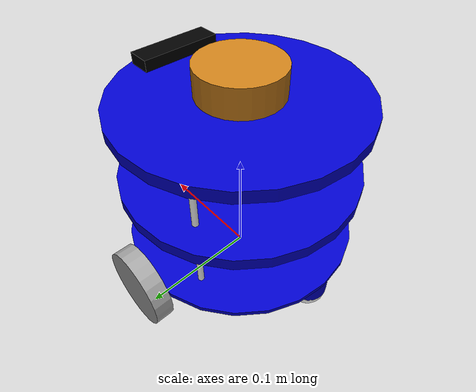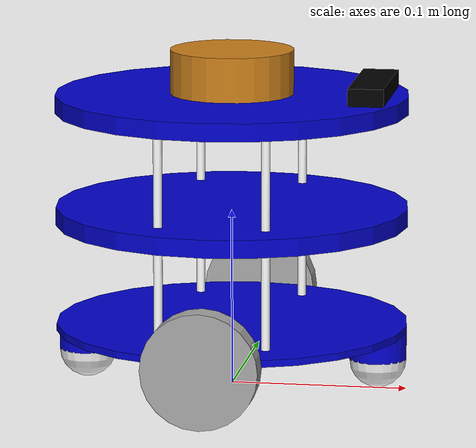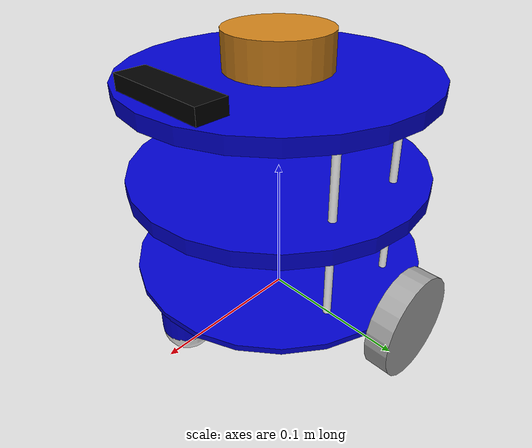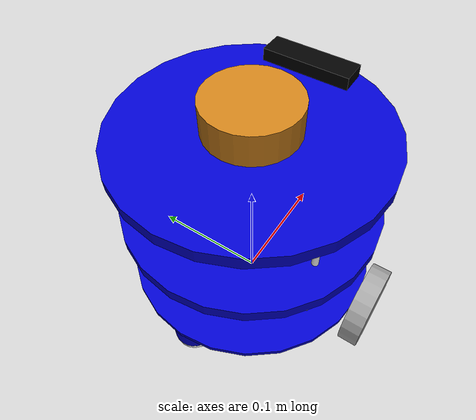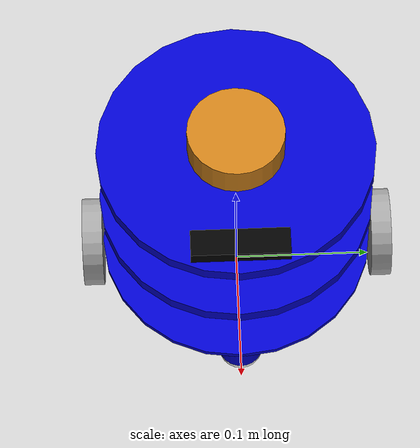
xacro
<?xml version='1.0'?>

<robot name="ronin">
  <!--
  ========== PROPERTIES ===========
  -->

  <!--All units in m-kg-s-radians unit system -->

  <property name="base_height" value="0.004" />
  <property name="base_radius" value="0.1" />
  <property name="base_mass" value="2.0" />

  <property name="wheel_radius" value="0.0325" />
  <property name="wheel_height" value="0.015" />
  <property name="wheel_mass" value="1" />

  <property name="caster_radius" value="${wheel_radius/2 + 0.00001}" />
  <property name="caster_mass" value="0.1" />

  <property name="tray_1_height" value="0.06" />
  <property name="tray_bar_radius" value="0.0025" />

  <property name="M_PI" value="3.1415926535897931" />
  <property name="M_PI_2" value="1.570796327" />
  <property name="DEG_TO_RAD" value="0.017453293" />

  <property name="laser_height" value="0.025" />
  <property name="laser_radius" value="0.035" />

  <!--
  ========== MATERIALS ===========
  -->
  <material name="Black">
    <color rgba="0.0 0.0 0.0 1.0"/>
  </material>

  <material name="Red">
    <color rgba="0.8 0.0 0.0 1.0"/>
  </material>

  <material name="White">
    <color rgba="1.0 1.0 1.0 1.0"/>
  </material>

  <material name="Blue">
    <color rgba="0.0 0.0 0.8 1.0"/>
  </material>

  <material name="Green">
    <color rgba="0.0 0.8 0.0 1.0"/>
  </material>

  <material name="Orange">
    <color rgba="0.8 0.5 0.1 1.0"/>
  </material>

  <material name="Gray">
    <color rgba="0.65 0.65 0.65 1.0"/>
  </material>

  <!--
  ========== MACROS ===========
  -->
  <!-- Macro for calculating inertia of cylinder -->
  <macro name="cylinder_inertia" params="m r h">
    <inertia  ixx="${m*(3*r*r+h*h)/12}" ixy = "0" ixz = "0"
              iyy="${m*(3*r*r+h*h)/12}" iyz = "0"
              izz="${m*r*r/2}" />
  </macro>

  <!-- Macro for calculating inertia of sphere -->
  <macro name="sphere_inertia" params="m r">
    <inertia  ixx="${2*m*r*r/5}" ixy = "0" ixz = "0"
              iyy="${2*m*r*r/5}" iyz = "0"
              izz="${2*m*r*r/5}" />
  </macro>

  <!-- Macro for TRANSMISSION WHEELS -->
  <macro name="wheel" params="fb lr parent translateX translateY translateZ flipY">
    <link name="${fb}_${lr}_wheel_link">
      <visual>
        <origin xyz="0 0 0" rpy="${flipY*M_PI/2} 0  0" />
        <geometry>
          <cylinder length="${wheel_height}" radius="${wheel_radius}" />
        </geometry>
        <material name="Gray" />
      </visual>
      <collision>
        <origin xyz="0 0 0" rpy="${flipY*M_PI/2} 0 0" />
        <geometry>
          <cylinder length="${wheel_height}" radius="${wheel_radius}" />
        </geometry>
      </collision>
      <inertial>
        <mass value="${wheel_mass}" />
        <origin xyz="0 0 0" />
        <cylinder_inertia  m="${wheel_mass}" r="${wheel_radius}" h="${wheel_height}" />
      </inertial>
    </link>

    <joint name="${fb}_${lr}_wheel_joint" type="continuous">
      <parent link="${parent}"/>
      <child link="${fb}_${lr}_wheel_link"/>
      <origin xyz="${translateX} ${translateY} ${translateZ}" rpy="0 0 0" />
      <axis xyz="0 1 0" rpy="0 0 0" />
      <limit effort="100" velocity="100"/>
      <joint_properties damping="0.0" friction="0.0"/>
    </joint>

    <!-- Transmission is important to link the joints and the controller -->
    <transmission name="${fb}_${lr}_wheel_joint_trans">
      <type>transmission_interface/SimpleTransmission</type>
      <joint name="${fb}_${lr}_wheel_joint" />
      <actuator name="${fb}_${lr}_wheel_joint_motor">
        <hardwareInterface>EffortJointInterface</hardwareInterface>
        <mechanicalReduction>1</mechanicalReduction>
      </actuator>
    </transmission>
  </macro>

  <!-- Macro for CASTER WHEELS -->
  <macro name="caster" params="fb parent translateX translateY translateZ">
    <link name="${fb}_caster_link">
      <visual>
	<origin xyz="0 0 0" rpy="0 0 0" />
	<geometry>
	  <sphere radius="${caster_radius}" />
	</geometry>
	<material name="White"/>
      </visual>
      <collision>
	<origin xyz="0 0 0" rpy="0 0 0" />
	<geometry>
	  <sphere radius="${caster_radius}" />
	</geometry>
      </collision>
      <inertial>
	<mass value="${caster_mass}" />
	<origin xyz="0 0 0" rpy="0 0 0" />
	<inertia ixx="0.001" ixy="0.0" ixz="0.0"
		iyy="0.001" iyz="0.0"
		izz="0.001" />
      </inertial>
    </link>

    <joint name="${fb}_caster_joint" type="fixed">
      <parent link="${parent}"/>
      <child link="${fb}_caster_link"/>
      <origin xyz="${translateX} ${translateY} ${translateZ}" rpy="0 0 0"/>
    </joint>

    <!-- Caster Base -->
    <link name="${fb}_caster_base_link">
      <visual>
	<origin xyz="0 0 0" rpy="0 0 0" />
	<geometry>
	  <cylinder length="${caster_radius}" radius="${caster_radius}" />
	</geometry>
	<material name="Blue"/>
      </visual>
      <collision>
	<origin xyz="0 0 0" rpy="0 0 0" />
	<geometry>
	  <cylinder length="${caster_radius}" radius="${caster_radius}" />
	</geometry>
      </collision>
      <inertial>
	<mass value="${caster_mass}" />
	<origin xyz="0 0 0" rpy="0 0 0" />
	<cylinder_inertia  m="${caster_mass}" r="${caster_radius}" h="${caster_radius}" />
      </inertial>
    </link>

    <joint name="${fb}_caster_base_joint" type="fixed">
      <parent link="${fb}_caster_link"/>
      <child link="${fb}_caster_base_link"/>
      <origin xyz="0 0 ${caster_radius/2}" rpy="0 0 0"/>
    </joint>
  </macro>

  <!-- Macro for TRAYS -->
  <macro name="tray" params="id parent translateZ">
    <link name="tray_${id}_link">
      <visual>
	<origin xyz="0 0 0" rpy="0 0 0" />
	<geometry>
	  <cylinder length="0.01" radius="${base_radius}" /> <!-- 1cm thick -->
	</geometry>
	<material name="Blue"/>
      </visual>

      <collision>
	<origin xyz="0 0 0" rpy="0 0 0" />
	<geometry>
	  <cylinder length="0.01" radius="${base_radius}" />
	</geometry>
      </collision>
      <inertial>
	<mass value="0.1" />
	<origin xyz="0 0 0" rpy="0 0 0" />
	<cylinder_inertia  m="0.1" r="${base_radius}" h="0.01" />
      </inertial>
    </link>

    <joint name="tray_${id}_joint" type="fixed">
      <parent link="${parent}"/>
      <child link="tray_${id}_link"/>
      <origin xyz="0 0 ${translateZ}" rpy="0 0 0"/>
    </joint>

    <link name="tray_${id}_bar_1_link">
      <visual>
	<origin xyz="0 0 0" rpy="0 0 0" />
	<geometry>
	  <cylinder length="${translateZ}" radius="${tray_bar_radius}" />
	</geometry>
	<material name="White"/>
      </visual>
    </link>

    <joint name="tray_${id}_bar_1_joint" type="fixed">
      <parent link="tray_${id}_link"/>
      <child link="tray_${id}_bar_1_link"/>
      <origin xyz="0.03 ${base_radius - 0.03} -${translateZ/2 + 0.005}" rpy="0 0 0"/>
    </joint>

    <link name="tray_${id}_bar_2_link">
      <visual>
	<origin xyz="0 0 0" rpy="0 0 0" />
	<geometry>
	  <cylinder length="${translateZ}" radius="${tray_bar_radius}" />
	</geometry>
	<material name="White"/>
      </visual>
    </link>

    <joint name="tray_${id}_bar_2_joint" type="fixed">
      <parent link="tray_${id}_link"/>
      <child link="tray_${id}_bar_2_link"/>
      <origin xyz="0.03 -${base_radius - 0.03} -${translateZ/2 + 0.005}" rpy="0 0 0"/>
    </joint>

    <link name="tray_${id}_bar_3_link">
      <visual>
	<origin xyz="0 0 0" rpy="0 0 0" />
	<geometry>
	  <cylinder length="${translateZ}" radius="${tray_bar_radius}" />
	</geometry>
	<material name="White"/>
      </visual>
    </link>

    <joint name="tray_${id}_bar_3_joint" type="fixed">
      <parent link="tray_${id}_link"/>
      <child link="tray_${id}_bar_3_link"/>
      <origin xyz="-0.03 ${base_radius - 0.03} -${translateZ/2 + 0.005}" rpy="0 0 0"/>
    </joint>

    <link name="tray_${id}_bar_4_link">
      <visual>
	<origin xyz="0 0 0" rpy="0 0 0" />
	<geometry>
	  <cylinder length="${translateZ}" radius="${tray_bar_radius}" />
	</geometry>
	<material name="White"/>
      </visual>
    </link>

    <joint name="tray_${id}_bar_4_joint" type="fixed">
      <parent link="tray_${id}_link"/>
      <child link="tray_${id}_bar_4_link"/>
      <origin xyz="-0.03 -${base_radius - 0.03} -${translateZ/2 + 0.005}" rpy="0 0 0"/>
    </joint>

  </macro>

  <!--
  ========== LINKS ===========
  -->

  <!-- BASE-FOOTPRINT -->
  <!-- base_footprint is a fictitious link(frame) that is on the ground right below base_link origin -->
  <link name="base_footprint">
    <inertial>
      <mass value="0.0001" />
      <origin xyz="0 0 0" />
      <inertia ixx="0.0001" ixy="0.0" ixz="0.0"
          iyy="0.0001" iyz="0.0"
          izz="0.0001" />
    </inertial>
    <visual>
        <origin xyz="0 0 0" rpy="0 0 0" />
        <geometry>
            <box size="0.001 0.001 0.001" />
        </geometry>
    </visual>
  </link>

  <!-- BASE-LINK -->
  <!--Actual body/chassis of the robot-->
  <link name="base_link">
    <visual>
      <origin xyz="0 0 0" rpy="0 0 0" />
      <geometry>
	<cylinder length="${base_height}" radius="${base_radius}" />
      </geometry>
      <material name="Blue" />
    </visual>
    <collision>
      <origin xyz="0 0 0" rpy="0 0 0 " />
      <geometry>
	<cylinder length="${base_height}" radius="${base_radius}" />
      </geometry>
    </collision>
    <inertial>
      <mass value="${base_mass}" />
      <origin xyz="0 0 0" />
      <cylinder_inertia  m="${base_mass}" r="${base_radius}" h="${base_height}" />
    </inertial>
  </link>

  <!-- TRANSMISSION WHEELS -->
  <wheel fb="front" lr="right" parent="base_link" translateX="0" translateY="${base_radius + wheel_height/2}" translateZ="-${base_height/3}" flipY="1"/>
  <wheel fb="front" lr="left" parent="base_link" translateX="0" translateY="-${base_radius + wheel_height/2}" translateZ="-${base_height/3}" flipY="1"/>

  <!-- CASTER WHEELS -->
  <caster fb="front" parent="base_link" translateX="${base_radius - caster_radius}" translateY="0" translateZ="-${base_height/3 + caster_radius - 0.0003}" />
  <caster fb="back" parent="base_link" translateX="-${base_radius - caster_radius}" translateY="0" translateZ="-${base_height/3 + caster_radius - 0.0003}" />

  <!-- TRAYS -->
  <tray id="1" parent="base_link" translateZ="${base_height + tray_1_height}" />

  <tray id="2" parent="tray_1_link" translateZ="${base_height + tray_1_height}" />

  <!--
  ========== JOINTS ===========
  -->

  <!-- BASE-FOOTPRINT >>> BASE-LINK -->
  <joint name="base_footprint_joint" type="fixed">
    <origin xyz="0 0 ${wheel_radius + base_height/2}" rpy="0 0 0" />
    <parent link="base_footprint"/>
    <child link="base_link" />
  </joint>

  <!--
  ========== SENSORS/PLUGINS ===========
  -->

  <!-- CAMERA  -->
  <link name="camera_link">
    <visual>
      <origin xyz="0 0 0" rpy="0 0 0" />
      <geometry>
	<box size="0.02 0.07 0.02"/>
      </geometry>
      <material name="Black" />
    </visual>
  </link>

  <joint name="camera_joint" type="fixed">
    <parent link="tray_2_link"/>
    <child link="camera_link"/>
    <origin xyz="${base_radius - 0.02} 0 0.005" rpy="0 0 0"/>
  </joint>

  <!-- RPLIDAR A1M8 -->
  <link name="laser">
    <visual>
      <!--origin xyz="0 0 0" rpy="0 0 ${M_PI}" /-->
      <origin xyz="0 0 0" rpy="0 0 0" />
      <geometry>
	<cylinder length="${laser_height}" radius="${laser_radius}" />
      </geometry>
      <material name="Orange" />
    </visual>
  </link>

  <joint name="laser_joint" type="fixed">
    <!--origin xyz="0 0 ${(0.01 + laser_height)/2}" rpy="0 0 ${M_PI}" /-->
    <origin xyz="0 0 ${(0.01 + laser_height)/2}" rpy="0 0 ${M_PI}" />
    <parent link="tray_2_link"/>
    <child link="laser" />
  </joint>

</robot>
